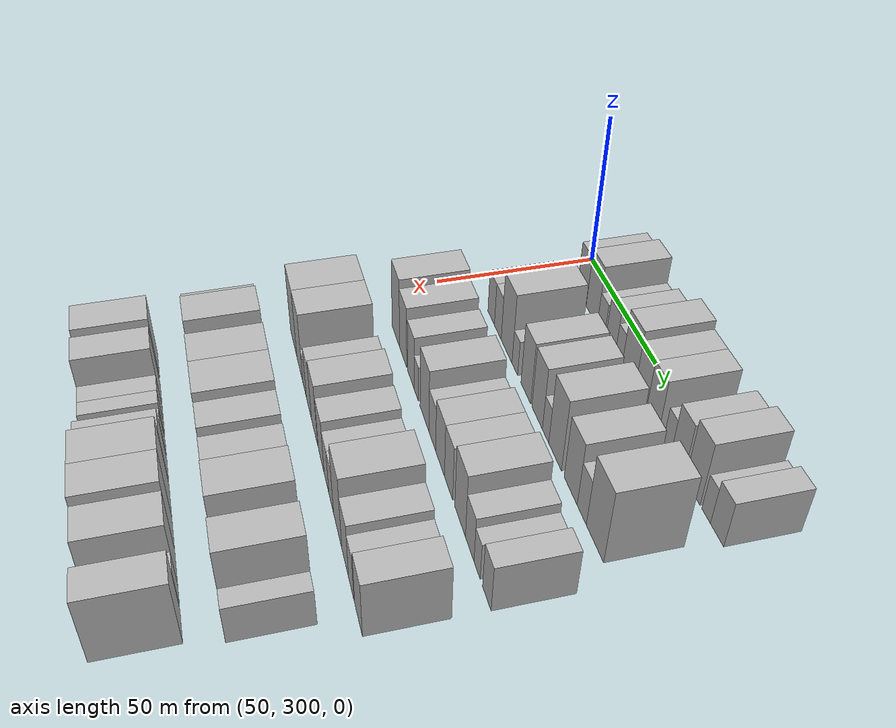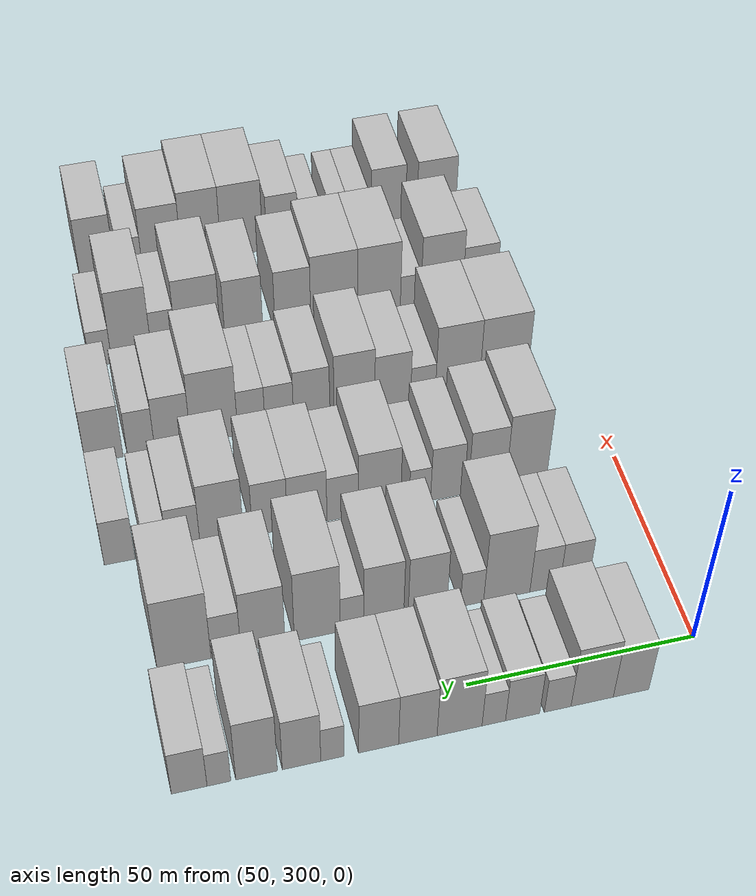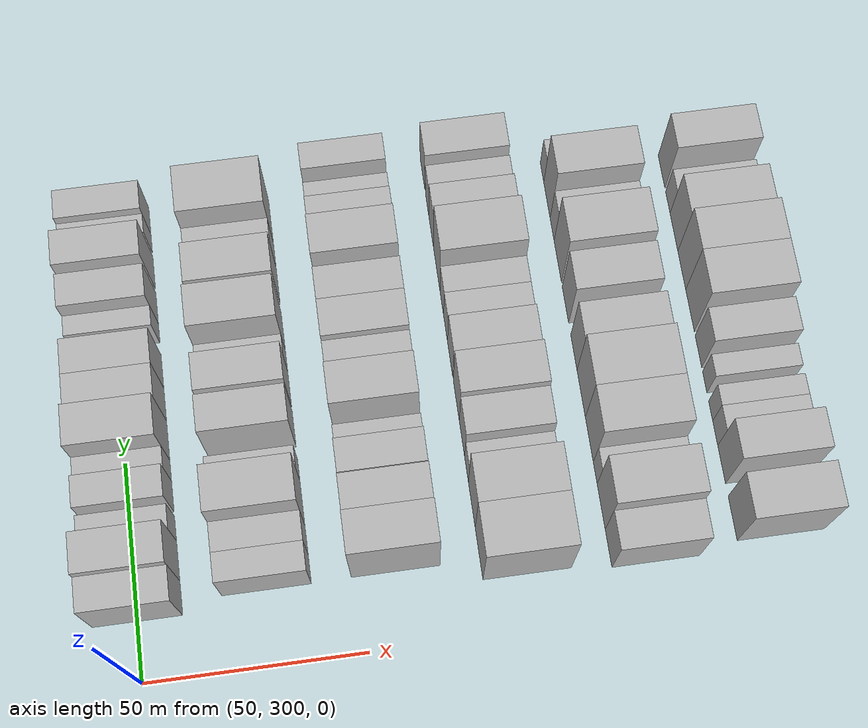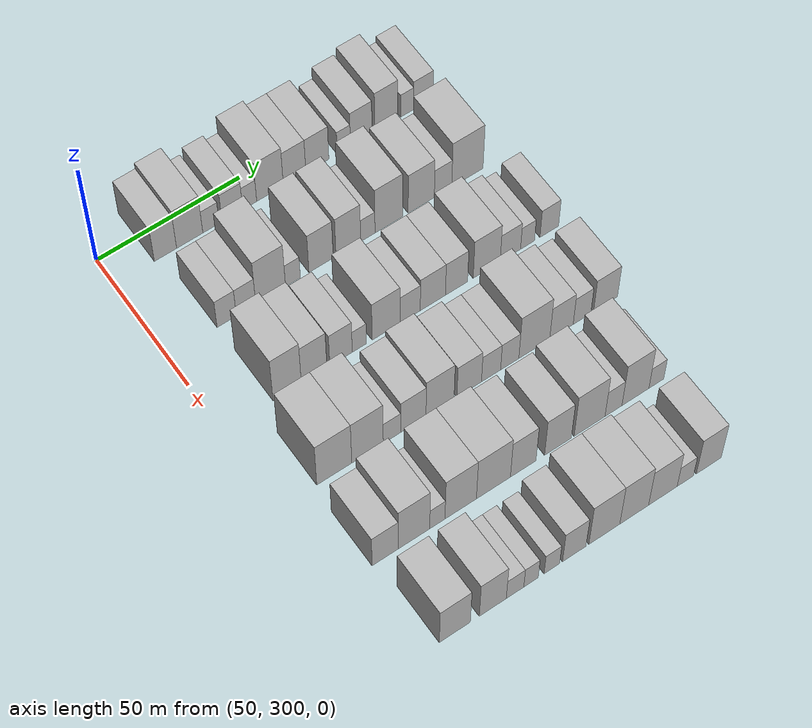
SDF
<sdf version="1.6">
 <world name="default">
  <model name="building_94">
   <static>1</static>
   <pose>50.0000 317.5456 0 0.000000 0.000000 0.000000</pose>
   <link name="link">
    <pose>0 0 9.00 0 0 0</pose>
    <collision name="collision"><geometry><box><size>20.0000 7.7484 18.0000</size></box></geometry></collision>
    <visual name="visual">
     <cast_shadows>0</cast_shadows>
     <geometry><box><size>20.0000 7.7484 18.0000</size></box></geometry>
     <material>
      <script>
       <uri>model://HANNAS_wall/materials/scripts</uri>
       <uri>model://HANNAS_wall/materials/textures</uri>
       <name>vrc/HANNAS_wall</name>
      </script>
     </material>
    </visual>
   </link>
  </model>
  <model name="building_95">
   <static>1</static>
   <pose>50.0000 325.9967 0 0.000000 0.000000 0.000000</pose>
   <link name="link">
    <pose>0 0 10.50 0 0 0</pose>
    <collision name="collision"><geometry><box><size>20.0000 9.1537 21.0000</size></box></geometry></collision>
    <visual name="visual">
     <cast_shadows>0</cast_shadows>
     <geometry><box><size>20.0000 9.1537 21.0000</size></box></geometry>
     <material>
      <script>
       <uri>model://HANNAS_wall/materials/scripts</uri>
       <uri>model://HANNAS_wall/materials/textures</uri>
       <name>vrc/HANNAS_wall</name>
      </script>
     </material>
    </visual>
   </link>
  </model>
  <model name="building_96">
   <static>1</static>
   <pose>50.0000 333.4361 0 0.000000 0.000000 0.000000</pose>
   <link name="link">
    <pose>0 0 6.00 0 0 0</pose>
    <collision name="collision"><geometry><box><size>20.0000 5.7251 12.0000</size></box></geometry></collision>
    <visual name="visual">
     <cast_shadows>0</cast_shadows>
     <geometry><box><size>20.0000 5.7251 12.0000</size></box></geometry>
     <material>
      <script>
       <uri>model://HANNAS_wall/materials/scripts</uri>
       <uri>model://HANNAS_wall/materials/textures</uri>
       <name>vrc/HANNAS_wall</name>
      </script>
     </material>
    </visual>
   </link>
  </model>
  <model name="building_97">
   <static>1</static>
   <pose>50.0000 340.9436 0 0.000000 0.000000 0.000000</pose>
   <link name="link">
    <pose>0 0 7.50 0 0 0</pose>
    <collision name="collision"><geometry><box><size>20.0000 7.2899 15.0000</size></box></geometry></collision>
    <visual name="visual">
     <cast_shadows>0</cast_shadows>
     <geometry><box><size>20.0000 7.2899 15.0000</size></box></geometry>
     <material>
      <script>
       <uri>model://HANNAS_wall/materials/scripts</uri>
       <uri>model://HANNAS_wall/materials/textures</uri>
       <name>vrc/HANNAS_wall</name>
      </script>
     </material>
    </visual>
   </link>
  </model>
  <model name="building_98">
   <static>1</static>
   <pose>50.0000 347.0834 0 0.000000 0.000000 0.000000</pose>
   <link name="link">
    <pose>0 0 6.00 0 0 0</pose>
    <collision name="collision"><geometry><box><size>20.0000 4.9898 12.0000</size></box></geometry></collision>
    <visual name="visual">
     <cast_shadows>0</cast_shadows>
     <geometry><box><size>20.0000 4.9898 12.0000</size></box></geometry>
     <material>
      <script>
       <uri>model://HANNAS_wall/materials/scripts</uri>
       <uri>model://HANNAS_wall/materials/textures</uri>
       <name>vrc/HANNAS_wall</name>
      </script>
     </material>
    </visual>
   </link>
  </model>
  <model name="building_99">
   <static>1</static>
   <pose>50.0000 354.3276 0 0.000000 0.000000 0.000000</pose>
   <link name="link">
    <pose>0 0 10.50 0 0 0</pose>
    <collision name="collision"><geometry><box><size>20.0000 9.4986 21.0000</size></box></geometry></collision>
    <visual name="visual">
     <cast_shadows>0</cast_shadows>
     <geometry><box><size>20.0000 9.4986 21.0000</size></box></geometry>
     <material>
      <script>
       <uri>model://HANNAS_wall/materials/scripts</uri>
       <uri>model://HANNAS_wall/materials/textures</uri>
       <name>vrc/HANNAS_wall</name>
      </script>
     </material>
    </visual>
   </link>
  </model>
  <model name="building_100">
   <static>1</static>
   <pose>50.0000 363.1067 0 0.000000 0.000000 0.000000</pose>
   <link name="link">
    <pose>0 0 9.00 0 0 0</pose>
    <collision name="collision"><geometry><box><size>20.0000 8.0596 18.0000</size></box></geometry></collision>
    <visual name="visual">
     <cast_shadows>0</cast_shadows>
     <geometry><box><size>20.0000 8.0596 18.0000</size></box></geometry>
     <material>
      <script>
       <uri>model://HANNAS_wall/materials/scripts</uri>
       <uri>model://HANNAS_wall/materials/textures</uri>
       <name>vrc/HANNAS_wall</name>
      </script>
     </material>
    </visual>
   </link>
  </model>
  <model name="building_101">
   <static>1</static>
   <pose>50.0000 371.2919 0 0.000000 0.000000 0.000000</pose>
   <link name="link">
    <pose>0 0 9.00 0 0 0</pose>
    <collision name="collision"><geometry><box><size>20.0000 8.3108 18.0000</size></box></geometry></collision>
    <visual name="visual">
     <cast_shadows>0</cast_shadows>
     <geometry><box><size>20.0000 8.3108 18.0000</size></box></geometry>
     <material>
      <script>
       <uri>model://HANNAS_wall/materials/scripts</uri>
       <uri>model://HANNAS_wall/materials/textures</uri>
       <name>vrc/HANNAS_wall</name>
      </script>
     </material>
    </visual>
   </link>
  </model>
  <model name="building_102">
   <static>1</static>
   <pose>50.0000 380.8614 0 0.000000 0.000000 0.000000</pose>
   <link name="link">
    <pose>0 0 6.00 0 0 0</pose>
    <collision name="collision"><geometry><box><size>20.0000 4.8282 12.0000</size></box></geometry></collision>
    <visual name="visual">
     <cast_shadows>0</cast_shadows>
     <geometry><box><size>20.0000 4.8282 12.0000</size></box></geometry>
     <material>
      <script>
       <uri>model://HANNAS_wall/materials/scripts</uri>
       <uri>model://HANNAS_wall/materials/textures</uri>
       <name>vrc/HANNAS_wall</name>
      </script>
     </material>
    </visual>
   </link>
  </model>
  <model name="building_103">
   <static>1</static>
   <pose>50.0000 387.2136 0 0.000000 0.000000 0.000000</pose>
   <link name="link">
    <pose>0 0 9.00 0 0 0</pose>
    <collision name="collision"><geometry><box><size>20.0000 7.8762 18.0000</size></box></geometry></collision>
    <visual name="visual">
     <cast_shadows>0</cast_shadows>
     <geometry><box><size>20.0000 7.8762 18.0000</size></box></geometry>
     <material>
      <script>
       <uri>model://HANNAS_wall/materials/scripts</uri>
       <uri>model://HANNAS_wall/materials/textures</uri>
       <name>vrc/HANNAS_wall</name>
      </script>
     </material>
    </visual>
   </link>
  </model>
  <model name="building_104">
   <static>1</static>
   <pose>50.0000 396.3852 0 0.000000 0.000000 0.000000</pose>
   <link name="link">
    <pose>0 0 10.50 0 0 0</pose>
    <collision name="collision"><geometry><box><size>20.0000 8.4671 21.0000</size></box></geometry></collision>
    <visual name="visual">
     <cast_shadows>0</cast_shadows>
     <geometry><box><size>20.0000 8.4671 21.0000</size></box></geometry>
     <material>
      <script>
       <uri>model://HANNAS_wall/materials/scripts</uri>
       <uri>model://HANNAS_wall/materials/textures</uri>
       <name>vrc/HANNAS_wall</name>
      </script>
     </material>
    </visual>
   </link>
  </model>
  <model name="building_105">
   <static>1</static>
   <pose>50.0000 404.0233 0 0.000000 0.000000 0.000000</pose>
   <link name="link">
    <pose>0 0 6.00 0 0 0</pose>
    <collision name="collision"><geometry><box><size>20.0000 4.8091 12.0000</size></box></geometry></collision>
    <visual name="visual">
     <cast_shadows>0</cast_shadows>
     <geometry><box><size>20.0000 4.8091 12.0000</size></box></geometry>
     <material>
      <script>
       <uri>model://HANNAS_wall/materials/scripts</uri>
       <uri>model://HANNAS_wall/materials/textures</uri>
       <name>vrc/HANNAS_wall</name>
      </script>
     </material>
    </visual>
   </link>
  </model>
  <model name="building_106">
   <static>1</static>
   <pose>50.0000 410.0201 0 0.000000 0.000000 0.000000</pose>
   <link name="link">
    <pose>0 0 7.50 0 0 0</pose>
    <collision name="collision"><geometry><box><size>20.0000 7.1845 15.0000</size></box></geometry></collision>
    <visual name="visual">
     <cast_shadows>0</cast_shadows>
     <geometry><box><size>20.0000 7.1845 15.0000</size></box></geometry>
     <material>
      <script>
       <uri>model://HANNAS_wall/materials/scripts</uri>
       <uri>model://HANNAS_wall/materials/textures</uri>
       <name>vrc/HANNAS_wall</name>
      </script>
     </material>
    </visual>
   </link>
  </model>
  <model name="building_211">
   <static>1</static>
   <pose>79.0000 320.1495 0 0.000000 0.000000 0.000000</pose>
   <link name="link">
    <pose>0 0 7.50 0 0 0</pose>
    <collision name="collision"><geometry><box><size>20.0000 6.6454 15.0000</size></box></geometry></collision>
    <visual name="visual">
     <cast_shadows>0</cast_shadows>
     <geometry><box><size>20.0000 6.6454 15.0000</size></box></geometry>
     <material>
      <script>
       <uri>model://HANNAS_wall/materials/scripts</uri>
       <uri>model://HANNAS_wall/materials/textures</uri>
       <name>vrc/HANNAS_wall</name>
      </script>
     </material>
    </visual>
   </link>
  </model>
  <model name="building_212">
   <static>1</static>
   <pose>79.0000 326.8447 0 0.000000 0.000000 0.000000</pose>
   <link name="link">
    <pose>0 0 7.50 0 0 0</pose>
    <collision name="collision"><geometry><box><size>20.0000 6.7449 15.0000</size></box></geometry></collision>
    <visual name="visual">
     <cast_shadows>0</cast_shadows>
     <geometry><box><size>20.0000 6.7449 15.0000</size></box></geometry>
     <material>
      <script>
       <uri>model://HANNAS_wall/materials/scripts</uri>
       <uri>model://HANNAS_wall/materials/textures</uri>
       <name>vrc/HANNAS_wall</name>
      </script>
     </material>
    </visual>
   </link>
  </model>
  <model name="building_213">
   <static>1</static>
   <pose>79.0000 335.4076 0 0.000000 0.000000 0.000000</pose>
   <link name="link">
    <pose>0 0 12.00 0 0 0</pose>
    <collision name="collision"><geometry><box><size>20.0000 10.3808 24.0000</size></box></geometry></collision>
    <visual name="visual">
     <cast_shadows>0</cast_shadows>
     <geometry><box><size>20.0000 10.3808 24.0000</size></box></geometry>
     <material>
      <script>
       <uri>model://HANNAS_wall/materials/scripts</uri>
       <uri>model://HANNAS_wall/materials/textures</uri>
       <name>vrc/HANNAS_wall</name>
      </script>
     </material>
    </visual>
   </link>
  </model>
  <model name="building_214">
   <static>1</static>
   <pose>79.0000 343.2000 0 0.000000 0.000000 0.000000</pose>
   <link name="link">
    <pose>0 0 6.00 0 0 0</pose>
    <collision name="collision"><geometry><box><size>20.0000 5.2040 12.0000</size></box></geometry></collision>
    <visual name="visual">
     <cast_shadows>0</cast_shadows>
     <geometry><box><size>20.0000 5.2040 12.0000</size></box></geometry>
     <material>
      <script>
       <uri>model://HANNAS_wall/materials/scripts</uri>
       <uri>model://HANNAS_wall/materials/textures</uri>
       <name>vrc/HANNAS_wall</name>
      </script>
     </material>
    </visual>
   </link>
  </model>
  <model name="building_215">
   <static>1</static>
   <pose>79.0000 353.0894 0 0.000000 0.000000 0.000000</pose>
   <link name="link">
    <pose>0 0 10.50 0 0 0</pose>
    <collision name="collision"><geometry><box><size>20.0000 8.5747 21.0000</size></box></geometry></collision>
    <visual name="visual">
     <cast_shadows>0</cast_shadows>
     <geometry><box><size>20.0000 8.5747 21.0000</size></box></geometry>
     <material>
      <script>
       <uri>model://HANNAS_wall/materials/scripts</uri>
       <uri>model://HANNAS_wall/materials/textures</uri>
       <name>vrc/HANNAS_wall</name>
      </script>
     </material>
    </visual>
   </link>
  </model>
  <model name="building_216">
   <static>1</static>
   <pose>79.0000 362.7636 0 0.000000 0.000000 0.000000</pose>
   <link name="link">
    <pose>0 0 10.50 0 0 0</pose>
    <collision name="collision"><geometry><box><size>20.0000 8.7737 21.0000</size></box></geometry></collision>
    <visual name="visual">
     <cast_shadows>0</cast_shadows>
     <geometry><box><size>20.0000 8.7737 21.0000</size></box></geometry>
     <material>
      <script>
       <uri>model://HANNAS_wall/materials/scripts</uri>
       <uri>model://HANNAS_wall/materials/textures</uri>
       <name>vrc/HANNAS_wall</name>
      </script>
     </material>
    </visual>
   </link>
  </model>
  <model name="building_217">
   <static>1</static>
   <pose>79.0000 369.7129 0 0.000000 0.000000 0.000000</pose>
   <link name="link">
    <pose>0 0 6.00 0 0 0</pose>
    <collision name="collision"><geometry><box><size>20.0000 5.1248 12.0000</size></box></geometry></collision>
    <visual name="visual">
     <cast_shadows>0</cast_shadows>
     <geometry><box><size>20.0000 5.1248 12.0000</size></box></geometry>
     <material>
      <script>
       <uri>model://HANNAS_wall/materials/scripts</uri>
       <uri>model://HANNAS_wall/materials/textures</uri>
       <name>vrc/HANNAS_wall</name>
      </script>
     </material>
    </visual>
   </link>
  </model>
  <model name="building_218">
   <static>1</static>
   <pose>79.0000 377.2242 0 0.000000 0.000000 0.000000</pose>
   <link name="link">
    <pose>0 0 12.00 0 0 0</pose>
    <collision name="collision"><geometry><box><size>20.0000 9.8980 24.0000</size></box></geometry></collision>
    <visual name="visual">
     <cast_shadows>0</cast_shadows>
     <geometry><box><size>20.0000 9.8980 24.0000</size></box></geometry>
     <material>
      <script>
       <uri>model://HANNAS_wall/materials/scripts</uri>
       <uri>model://HANNAS_wall/materials/textures</uri>
       <name>vrc/HANNAS_wall</name>
      </script>
     </material>
    </visual>
   </link>
  </model>
  <model name="building_219">
   <static>1</static>
   <pose>79.0000 388.9121 0 0.000000 0.000000 0.000000</pose>
   <link name="link">
    <pose>0 0 10.50 0 0 0</pose>
    <collision name="collision"><geometry><box><size>20.0000 9.4777 21.0000</size></box></geometry></collision>
    <visual name="visual">
     <cast_shadows>0</cast_shadows>
     <geometry><box><size>20.0000 9.4777 21.0000</size></box></geometry>
     <material>
      <script>
       <uri>model://HANNAS_wall/materials/scripts</uri>
       <uri>model://HANNAS_wall/materials/textures</uri>
       <name>vrc/HANNAS_wall</name>
      </script>
     </material>
    </visual>
   </link>
  </model>
  <model name="building_220">
   <static>1</static>
   <pose>79.0000 396.8178 0 0.000000 0.000000 0.000000</pose>
   <link name="link">
    <pose>0 0 7.50 0 0 0</pose>
    <collision name="collision"><geometry><box><size>20.0000 6.3336 15.0000</size></box></geometry></collision>
    <visual name="visual">
     <cast_shadows>0</cast_shadows>
     <geometry><box><size>20.0000 6.3336 15.0000</size></box></geometry>
     <material>
      <script>
       <uri>model://HANNAS_wall/materials/scripts</uri>
       <uri>model://HANNAS_wall/materials/textures</uri>
       <name>vrc/HANNAS_wall</name>
      </script>
     </material>
    </visual>
   </link>
  </model>
  <model name="building_221">
   <static>1</static>
   <pose>79.0000 405.7163 0 0.000000 0.000000 0.000000</pose>
   <link name="link">
    <pose>0 0 12.00 0 0 0</pose>
    <collision name="collision"><geometry><box><size>20.0000 11.4636 24.0000</size></box></geometry></collision>
    <visual name="visual">
     <cast_shadows>0</cast_shadows>
     <geometry><box><size>20.0000 11.4636 24.0000</size></box></geometry>
     <material>
      <script>
       <uri>model://HANNAS_wall/materials/scripts</uri>
       <uri>model://HANNAS_wall/materials/textures</uri>
       <name>vrc/HANNAS_wall</name>
      </script>
     </material>
    </visual>
   </link>
  </model>
  <model name="building_326">
   <static>1</static>
   <pose>108.0000 321.8942 0 0.000000 0.000000 0.000000</pose>
   <link name="link">
    <pose>0 0 12.00 0 0 0</pose>
    <collision name="collision"><geometry><box><size>20.0000 9.6993 24.0000</size></box></geometry></collision>
    <visual name="visual">
     <cast_shadows>0</cast_shadows>
     <geometry><box><size>20.0000 9.6993 24.0000</size></box></geometry>
     <material>
      <script>
       <uri>model://HANNAS_wall/materials/scripts</uri>
       <uri>model://HANNAS_wall/materials/textures</uri>
       <name>vrc/HANNAS_wall</name>
      </script>
     </material>
    </visual>
   </link>
  </model>
  <model name="building_327">
   <static>1</static>
   <pose>108.0000 331.1602 0 0.000000 0.000000 0.000000</pose>
   <link name="link">
    <pose>0 0 10.50 0 0 0</pose>
    <collision name="collision"><geometry><box><size>20.0000 8.8326 21.0000</size></box></geometry></collision>
    <visual name="visual">
     <cast_shadows>0</cast_shadows>
     <geometry><box><size>20.0000 8.8326 21.0000</size></box></geometry>
     <material>
      <script>
       <uri>model://HANNAS_wall/materials/scripts</uri>
       <uri>model://HANNAS_wall/materials/textures</uri>
       <name>vrc/HANNAS_wall</name>
      </script>
     </material>
    </visual>
   </link>
  </model>
  <model name="building_328">
   <static>1</static>
   <pose>108.0000 340.4703 0 0.000000 0.000000 0.000000</pose>
   <link name="link">
    <pose>0 0 9.00 0 0 0</pose>
    <collision name="collision"><geometry><box><size>20.0000 7.7877 18.0000</size></box></geometry></collision>
    <visual name="visual">
     <cast_shadows>0</cast_shadows>
     <geometry><box><size>20.0000 7.7877 18.0000</size></box></geometry>
     <material>
      <script>
       <uri>model://HANNAS_wall/materials/scripts</uri>
       <uri>model://HANNAS_wall/materials/textures</uri>
       <name>vrc/HANNAS_wall</name>
      </script>
     </material>
    </visual>
   </link>
  </model>
  <model name="building_329">
   <static>1</static>
   <pose>108.0000 346.8406 0 0.000000 0.000000 0.000000</pose>
   <link name="link">
    <pose>0 0 6.00 0 0 0</pose>
    <collision name="collision"><geometry><box><size>20.0000 4.9529 12.0000</size></box></geometry></collision>
    <visual name="visual">
     <cast_shadows>0</cast_shadows>
     <geometry><box><size>20.0000 4.9529 12.0000</size></box></geometry>
     <material>
      <script>
       <uri>model://HANNAS_wall/materials/scripts</uri>
       <uri>model://HANNAS_wall/materials/textures</uri>
       <name>vrc/HANNAS_wall</name>
      </script>
     </material>
    </visual>
   </link>
  </model>
  <model name="building_330">
   <static>1</static>
   <pose>108.0000 356.1940 0 0.000000 0.000000 0.000000</pose>
   <link name="link">
    <pose>0 0 10.50 0 0 0</pose>
    <collision name="collision"><geometry><box><size>20.0000 9.7540 21.0000</size></box></geometry></collision>
    <visual name="visual">
     <cast_shadows>0</cast_shadows>
     <geometry><box><size>20.0000 9.7540 21.0000</size></box></geometry>
     <material>
      <script>
       <uri>model://HANNAS_wall/materials/scripts</uri>
       <uri>model://HANNAS_wall/materials/textures</uri>
       <name>vrc/HANNAS_wall</name>
      </script>
     </material>
    </visual>
   </link>
  </model>
  <model name="building_331">
   <static>1</static>
   <pose>108.0000 364.6523 0 0.000000 0.000000 0.000000</pose>
   <link name="link">
    <pose>0 0 7.50 0 0 0</pose>
    <collision name="collision"><geometry><box><size>20.0000 7.1626 15.0000</size></box></geometry></collision>
    <visual name="visual">
     <cast_shadows>0</cast_shadows>
     <geometry><box><size>20.0000 7.1626 15.0000</size></box></geometry>
     <material>
      <script>
       <uri>model://HANNAS_wall/materials/scripts</uri>
       <uri>model://HANNAS_wall/materials/textures</uri>
       <name>vrc/HANNAS_wall</name>
      </script>
     </material>
    </visual>
   </link>
  </model>
  <model name="building_332">
   <static>1</static>
   <pose>108.0000 372.7127 0 0.000000 0.000000 0.000000</pose>
   <link name="link">
    <pose>0 0 9.00 0 0 0</pose>
    <collision name="collision"><geometry><box><size>20.0000 8.9581 18.0000</size></box></geometry></collision>
    <visual name="visual">
     <cast_shadows>0</cast_shadows>
     <geometry><box><size>20.0000 8.9581 18.0000</size></box></geometry>
     <material>
      <script>
       <uri>model://HANNAS_wall/materials/scripts</uri>
       <uri>model://HANNAS_wall/materials/textures</uri>
       <name>vrc/HANNAS_wall</name>
      </script>
     </material>
    </visual>
   </link>
  </model>
  <model name="building_333">
   <static>1</static>
   <pose>108.0000 381.1508 0 0.000000 0.000000 0.000000</pose>
   <link name="link">
    <pose>0 0 9.00 0 0 0</pose>
    <collision name="collision"><geometry><box><size>20.0000 7.9183 18.0000</size></box></geometry></collision>
    <visual name="visual">
     <cast_shadows>0</cast_shadows>
     <geometry><box><size>20.0000 7.9183 18.0000</size></box></geometry>
     <material>
      <script>
       <uri>model://HANNAS_wall/materials/scripts</uri>
       <uri>model://HANNAS_wall/materials/textures</uri>
       <name>vrc/HANNAS_wall</name>
      </script>
     </material>
    </visual>
   </link>
  </model>
  <model name="building_334">
   <static>1</static>
   <pose>108.0000 391.9705 0 0.000000 0.000000 0.000000</pose>
   <link name="link">
    <pose>0 0 10.50 0 0 0</pose>
    <collision name="collision"><geometry><box><size>20.0000 9.7210 21.0000</size></box></geometry></collision>
    <visual name="visual">
     <cast_shadows>0</cast_shadows>
     <geometry><box><size>20.0000 9.7210 21.0000</size></box></geometry>
     <material>
      <script>
       <uri>model://HANNAS_wall/materials/scripts</uri>
       <uri>model://HANNAS_wall/materials/textures</uri>
       <name>vrc/HANNAS_wall</name>
      </script>
     </material>
    </visual>
   </link>
  </model>
  <model name="building_335">
   <static>1</static>
   <pose>108.0000 400.5293 0 0.000000 0.000000 0.000000</pose>
   <link name="link">
    <pose>0 0 7.50 0 0 0</pose>
    <collision name="collision"><geometry><box><size>20.0000 7.3966 15.0000</size></box></geometry></collision>
    <visual name="visual">
     <cast_shadows>0</cast_shadows>
     <geometry><box><size>20.0000 7.3966 15.0000</size></box></geometry>
     <material>
      <script>
       <uri>model://HANNAS_wall/materials/scripts</uri>
       <uri>model://HANNAS_wall/materials/textures</uri>
       <name>vrc/HANNAS_wall</name>
      </script>
     </material>
    </visual>
   </link>
  </model>
  <model name="building_336">
   <static>1</static>
   <pose>108.0000 406.7653 0 0.000000 0.000000 0.000000</pose>
   <link name="link">
    <pose>0 0 6.00 0 0 0</pose>
    <collision name="collision"><geometry><box><size>20.0000 5.0753 12.0000</size></box></geometry></collision>
    <visual name="visual">
     <cast_shadows>0</cast_shadows>
     <geometry><box><size>20.0000 5.0753 12.0000</size></box></geometry>
     <material>
      <script>
       <uri>model://HANNAS_wall/materials/scripts</uri>
       <uri>model://HANNAS_wall/materials/textures</uri>
       <name>vrc/HANNAS_wall</name>
      </script>
     </material>
    </visual>
   </link>
  </model>
  <model name="building_337">
   <static>1</static>
   <pose>108.0000 414.7050 0 0.000000 0.000000 0.000000</pose>
   <link name="link">
    <pose>0 0 7.50 0 0 0</pose>
    <collision name="collision"><geometry><box><size>20.0000 6.8040 15.0000</size></box></geometry></collision>
    <visual name="visual">
     <cast_shadows>0</cast_shadows>
     <geometry><box><size>20.0000 6.8040 15.0000</size></box></geometry>
     <material>
      <script>
       <uri>model://HANNAS_wall/materials/scripts</uri>
       <uri>model://HANNAS_wall/materials/textures</uri>
       <name>vrc/HANNAS_wall</name>
      </script>
     </material>
    </visual>
   </link>
  </model>
  <model name="building_443">
   <static>1</static>
   <pose>137.0000 318.4791 0 0.000000 0.000000 0.000000</pose>
   <link name="link">
    <pose>0 0 12.00 0 0 0</pose>
    <collision name="collision"><geometry><box><size>20.0000 11.8787 24.0000</size></box></geometry></collision>
    <visual name="visual">
     <cast_shadows>0</cast_shadows>
     <geometry><box><size>20.0000 11.8787 24.0000</size></box></geometry>
     <material>
      <script>
       <uri>model://HANNAS_wall/materials/scripts</uri>
       <uri>model://HANNAS_wall/materials/textures</uri>
       <name>vrc/HANNAS_wall</name>
      </script>
     </material>
    </visual>
   </link>
  </model>
  <model name="building_444">
   <static>1</static>
   <pose>137.0000 329.7990 0 0.000000 0.000000 0.000000</pose>
   <link name="link">
    <pose>0 0 12.00 0 0 0</pose>
    <collision name="collision"><geometry><box><size>20.0000 10.7611 24.0000</size></box></geometry></collision>
    <visual name="visual">
     <cast_shadows>0</cast_shadows>
     <geometry><box><size>20.0000 10.7611 24.0000</size></box></geometry>
     <material>
      <script>
       <uri>model://HANNAS_wall/materials/scripts</uri>
       <uri>model://HANNAS_wall/materials/textures</uri>
       <name>vrc/HANNAS_wall</name>
      </script>
     </material>
    </visual>
   </link>
  </model>
  <model name="building_445">
   <static>1</static>
   <pose>137.0000 338.1789 0 0.000000 0.000000 0.000000</pose>
   <link name="link">
    <pose>0 0 6.00 0 0 0</pose>
    <collision name="collision"><geometry><box><size>20.0000 5.9987 12.0000</size></box></geometry></collision>
    <visual name="visual">
     <cast_shadows>0</cast_shadows>
     <geometry><box><size>20.0000 5.9987 12.0000</size></box></geometry>
     <material>
      <script>
       <uri>model://HANNAS_wall/materials/scripts</uri>
       <uri>model://HANNAS_wall/materials/textures</uri>
       <name>vrc/HANNAS_wall</name>
      </script>
     </material>
    </visual>
   </link>
  </model>
  <model name="building_446">
   <static>1</static>
   <pose>137.0000 345.5407 0 0.000000 0.000000 0.000000</pose>
   <link name="link">
    <pose>0 0 9.00 0 0 0</pose>
    <collision name="collision"><geometry><box><size>20.0000 8.7248 18.0000</size></box></geometry></collision>
    <visual name="visual">
     <cast_shadows>0</cast_shadows>
     <geometry><box><size>20.0000 8.7248 18.0000</size></box></geometry>
     <material>
      <script>
       <uri>model://HANNAS_wall/materials/scripts</uri>
       <uri>model://HANNAS_wall/materials/textures</uri>
       <name>vrc/HANNAS_wall</name>
      </script>
     </material>
    </visual>
   </link>
  </model>
  <model name="building_447">
   <static>1</static>
   <pose>137.0000 354.7885 0 0.000000 0.000000 0.000000</pose>
   <link name="link">
    <pose>0 0 10.50 0 0 0</pose>
    <collision name="collision"><geometry><box><size>20.0000 9.7709 21.0000</size></box></geometry></collision>
    <visual name="visual">
     <cast_shadows>0</cast_shadows>
     <geometry><box><size>20.0000 9.7709 21.0000</size></box></geometry>
     <material>
      <script>
       <uri>model://HANNAS_wall/materials/scripts</uri>
       <uri>model://HANNAS_wall/materials/textures</uri>
       <name>vrc/HANNAS_wall</name>
      </script>
     </material>
    </visual>
   </link>
  </model>
  <model name="building_448">
   <static>1</static>
   <pose>137.0000 364.9787 0 0.000000 0.000000 0.000000</pose>
   <link name="link">
    <pose>0 0 9.00 0 0 0</pose>
    <collision name="collision"><geometry><box><size>20.0000 8.6094 18.0000</size></box></geometry></collision>
    <visual name="visual">
     <cast_shadows>0</cast_shadows>
     <geometry><box><size>20.0000 8.6094 18.0000</size></box></geometry>
     <material>
      <script>
       <uri>model://HANNAS_wall/materials/scripts</uri>
       <uri>model://HANNAS_wall/materials/textures</uri>
       <name>vrc/HANNAS_wall</name>
      </script>
     </material>
    </visual>
   </link>
  </model>
  <model name="building_449">
   <static>1</static>
   <pose>137.0000 372.6633 0 0.000000 0.000000 0.000000</pose>
   <link name="link">
    <pose>0 0 7.50 0 0 0</pose>
    <collision name="collision"><geometry><box><size>20.0000 6.7599 15.0000</size></box></geometry></collision>
    <visual name="visual">
     <cast_shadows>0</cast_shadows>
     <geometry><box><size>20.0000 6.7599 15.0000</size></box></geometry>
     <material>
      <script>
       <uri>model://HANNAS_wall/materials/scripts</uri>
       <uri>model://HANNAS_wall/materials/textures</uri>
       <name>vrc/HANNAS_wall</name>
      </script>
     </material>
    </visual>
   </link>
  </model>
  <model name="building_450">
   <static>1</static>
   <pose>137.0000 379.2748 0 0.000000 0.000000 0.000000</pose>
   <link name="link">
    <pose>0 0 7.50 0 0 0</pose>
    <collision name="collision"><geometry><box><size>20.0000 6.4633 15.0000</size></box></geometry></collision>
    <visual name="visual">
     <cast_shadows>0</cast_shadows>
     <geometry><box><size>20.0000 6.4633 15.0000</size></box></geometry>
     <material>
      <script>
       <uri>model://HANNAS_wall/materials/scripts</uri>
       <uri>model://HANNAS_wall/materials/textures</uri>
       <name>vrc/HANNAS_wall</name>
      </script>
     </material>
    </visual>
   </link>
  </model>
  <model name="building_451">
   <static>1</static>
   <pose>137.0000 388.0158 0 0.000000 0.000000 0.000000</pose>
   <link name="link">
    <pose>0 0 12.00 0 0 0</pose>
    <collision name="collision"><geometry><box><size>20.0000 11.0187 24.0000</size></box></geometry></collision>
    <visual name="visual">
     <cast_shadows>0</cast_shadows>
     <geometry><box><size>20.0000 11.0187 24.0000</size></box></geometry>
     <material>
      <script>
       <uri>model://HANNAS_wall/materials/scripts</uri>
       <uri>model://HANNAS_wall/materials/textures</uri>
       <name>vrc/HANNAS_wall</name>
      </script>
     </material>
    </visual>
   </link>
  </model>
  <model name="building_452">
   <static>1</static>
   <pose>137.0000 397.7328 0 0.000000 0.000000 0.000000</pose>
   <link name="link">
    <pose>0 0 9.00 0 0 0</pose>
    <collision name="collision"><geometry><box><size>20.0000 8.4152 18.0000</size></box></geometry></collision>
    <visual name="visual">
     <cast_shadows>0</cast_shadows>
     <geometry><box><size>20.0000 8.4152 18.0000</size></box></geometry>
     <material>
      <script>
       <uri>model://HANNAS_wall/materials/scripts</uri>
       <uri>model://HANNAS_wall/materials/textures</uri>
       <name>vrc/HANNAS_wall</name>
      </script>
     </material>
    </visual>
   </link>
  </model>
  <model name="building_453">
   <static>1</static>
   <pose>137.0000 405.1197 0 0.000000 0.000000 0.000000</pose>
   <link name="link">
    <pose>0 0 7.50 0 0 0</pose>
    <collision name="collision"><geometry><box><size>20.0000 6.3587 15.0000</size></box></geometry></collision>
    <visual name="visual">
     <cast_shadows>0</cast_shadows>
     <geometry><box><size>20.0000 6.3587 15.0000</size></box></geometry>
     <material>
      <script>
       <uri>model://HANNAS_wall/materials/scripts</uri>
       <uri>model://HANNAS_wall/materials/textures</uri>
       <name>vrc/HANNAS_wall</name>
      </script>
     </material>
    </visual>
   </link>
  </model>
  <model name="building_454">
   <static>1</static>
   <pose>137.0000 413.6457 0 0.000000 0.000000 0.000000</pose>
   <link name="link">
    <pose>0 0 9.00 0 0 0</pose>
    <collision name="collision"><geometry><box><size>20.0000 8.6934 18.0000</size></box></geometry></collision>
    <visual name="visual">
     <cast_shadows>0</cast_shadows>
     <geometry><box><size>20.0000 8.6934 18.0000</size></box></geometry>
     <material>
      <script>
       <uri>model://HANNAS_wall/materials/scripts</uri>
       <uri>model://HANNAS_wall/materials/textures</uri>
       <name>vrc/HANNAS_wall</name>
      </script>
     </material>
    </visual>
   </link>
  </model>
  <model name="building_563">
   <static>1</static>
   <pose>166.0000 315.7777 0 0.000000 0.000000 0.000000</pose>
   <link name="link">
    <pose>0 0 9.00 0 0 0</pose>
    <collision name="collision"><geometry><box><size>20.0000 8.7496 18.0000</size></box></geometry></collision>
    <visual name="visual">
     <cast_shadows>0</cast_shadows>
     <geometry><box><size>20.0000 8.7496 18.0000</size></box></geometry>
     <material>
      <script>
       <uri>model://HANNAS_wall/materials/scripts</uri>
       <uri>model://HANNAS_wall/materials/textures</uri>
       <name>vrc/HANNAS_wall</name>
      </script>
     </material>
    </visual>
   </link>
  </model>
  <model name="building_564">
   <static>1</static>
   <pose>166.0000 325.4791 0 0.000000 0.000000 0.000000</pose>
   <link name="link">
    <pose>0 0 12.00 0 0 0</pose>
    <collision name="collision"><geometry><box><size>20.0000 10.6532 24.0000</size></box></geometry></collision>
    <visual name="visual">
     <cast_shadows>0</cast_shadows>
     <geometry><box><size>20.0000 10.6532 24.0000</size></box></geometry>
     <material>
      <script>
       <uri>model://HANNAS_wall/materials/scripts</uri>
       <uri>model://HANNAS_wall/materials/textures</uri>
       <name>vrc/HANNAS_wall</name>
      </script>
     </material>
    </visual>
   </link>
  </model>
  <model name="building_565">
   <static>1</static>
   <pose>166.0000 333.3947 0 0.000000 0.000000 0.000000</pose>
   <link name="link">
    <pose>0 0 6.00 0 0 0</pose>
    <collision name="collision"><geometry><box><size>20.0000 5.1779 12.0000</size></box></geometry></collision>
    <visual name="visual">
     <cast_shadows>0</cast_shadows>
     <geometry><box><size>20.0000 5.1779 12.0000</size></box></geometry>
     <material>
      <script>
       <uri>model://HANNAS_wall/materials/scripts</uri>
       <uri>model://HANNAS_wall/materials/textures</uri>
       <name>vrc/HANNAS_wall</name>
      </script>
     </material>
    </visual>
   </link>
  </model>
  <model name="building_566">
   <static>1</static>
   <pose>166.0000 341.3629 0 0.000000 0.000000 0.000000</pose>
   <link name="link">
    <pose>0 0 12.00 0 0 0</pose>
    <collision name="collision"><geometry><box><size>20.0000 10.7587 24.0000</size></box></geometry></collision>
    <visual name="visual">
     <cast_shadows>0</cast_shadows>
     <geometry><box><size>20.0000 10.7587 24.0000</size></box></geometry>
     <material>
      <script>
       <uri>model://HANNAS_wall/materials/scripts</uri>
       <uri>model://HANNAS_wall/materials/textures</uri>
       <name>vrc/HANNAS_wall</name>
      </script>
     </material>
    </visual>
   </link>
  </model>
  <model name="building_567">
   <static>1</static>
   <pose>166.0000 352.6071 0 0.000000 0.000000 0.000000</pose>
   <link name="link">
    <pose>0 0 12.00 0 0 0</pose>
    <collision name="collision"><geometry><box><size>20.0000 11.7297 24.0000</size></box></geometry></collision>
    <visual name="visual">
     <cast_shadows>0</cast_shadows>
     <geometry><box><size>20.0000 11.7297 24.0000</size></box></geometry>
     <material>
      <script>
       <uri>model://HANNAS_wall/materials/scripts</uri>
       <uri>model://HANNAS_wall/materials/textures</uri>
       <name>vrc/HANNAS_wall</name>
      </script>
     </material>
    </visual>
   </link>
  </model>
  <model name="building_568">
   <static>1</static>
   <pose>166.0000 362.9113 0 0.000000 0.000000 0.000000</pose>
   <link name="link">
    <pose>0 0 10.50 0 0 0</pose>
    <collision name="collision"><geometry><box><size>20.0000 8.8787 21.0000</size></box></geometry></collision>
    <visual name="visual">
     <cast_shadows>0</cast_shadows>
     <geometry><box><size>20.0000 8.8787 21.0000</size></box></geometry>
     <material>
      <script>
       <uri>model://HANNAS_wall/materials/scripts</uri>
       <uri>model://HANNAS_wall/materials/textures</uri>
       <name>vrc/HANNAS_wall</name>
      </script>
     </material>
    </visual>
   </link>
  </model>
  <model name="building_569">
   <static>1</static>
   <pose>166.0000 375.0341 0 0.000000 0.000000 0.000000</pose>
   <link name="link">
    <pose>0 0 10.50 0 0 0</pose>
    <collision name="collision"><geometry><box><size>20.0000 9.3670 21.0000</size></box></geometry></collision>
    <visual name="visual">
     <cast_shadows>0</cast_shadows>
     <geometry><box><size>20.0000 9.3670 21.0000</size></box></geometry>
     <material>
      <script>
       <uri>model://HANNAS_wall/materials/scripts</uri>
       <uri>model://HANNAS_wall/materials/textures</uri>
       <name>vrc/HANNAS_wall</name>
      </script>
     </material>
    </visual>
   </link>
  </model>
  <model name="building_570">
   <static>1</static>
   <pose>166.0000 386.1787 0 0.000000 0.000000 0.000000</pose>
   <link name="link">
    <pose>0 0 12.00 0 0 0</pose>
    <collision name="collision"><geometry><box><size>20.0000 10.9221 24.0000</size></box></geometry></collision>
    <visual name="visual">
     <cast_shadows>0</cast_shadows>
     <geometry><box><size>20.0000 10.9221 24.0000</size></box></geometry>
     <material>
      <script>
       <uri>model://HANNAS_wall/materials/scripts</uri>
       <uri>model://HANNAS_wall/materials/textures</uri>
       <name>vrc/HANNAS_wall</name>
      </script>
     </material>
    </visual>
   </link>
  </model>
  <model name="building_571">
   <static>1</static>
   <pose>166.0000 394.6502 0 0.000000 0.000000 0.000000</pose>
   <link name="link">
    <pose>0 0 7.50 0 0 0</pose>
    <collision name="collision"><geometry><box><size>20.0000 6.0210 15.0000</size></box></geometry></collision>
    <visual name="visual">
     <cast_shadows>0</cast_shadows>
     <geometry><box><size>20.0000 6.0210 15.0000</size></box></geometry>
     <material>
      <script>
       <uri>model://HANNAS_wall/materials/scripts</uri>
       <uri>model://HANNAS_wall/materials/textures</uri>
       <name>vrc/HANNAS_wall</name>
      </script>
     </material>
    </visual>
   </link>
  </model>
  <model name="building_572">
   <static>1</static>
   <pose>166.0000 402.4946 0 0.000000 0.000000 0.000000</pose>
   <link name="link">
    <pose>0 0 12.00 0 0 0</pose>
    <collision name="collision"><geometry><box><size>20.0000 9.6678 24.0000</size></box></geometry></collision>
    <visual name="visual">
     <cast_shadows>0</cast_shadows>
     <geometry><box><size>20.0000 9.6678 24.0000</size></box></geometry>
     <material>
      <script>
       <uri>model://HANNAS_wall/materials/scripts</uri>
       <uri>model://HANNAS_wall/materials/textures</uri>
       <name>vrc/HANNAS_wall</name>
      </script>
     </material>
    </visual>
   </link>
  </model>
  <model name="building_573">
   <static>1</static>
   <pose>166.0000 409.9994 0 0.000000 0.000000 0.000000</pose>
   <link name="link">
    <pose>0 0 6.00 0 0 0</pose>
    <collision name="collision"><geometry><box><size>20.0000 5.3418 12.0000</size></box></geometry></collision>
    <visual name="visual">
     <cast_shadows>0</cast_shadows>
     <geometry><box><size>20.0000 5.3418 12.0000</size></box></geometry>
     <material>
      <script>
       <uri>model://HANNAS_wall/materials/scripts</uri>
       <uri>model://HANNAS_wall/materials/textures</uri>
       <name>vrc/HANNAS_wall</name>
      </script>
     </material>
    </visual>
   </link>
  </model>
  <model name="building_676">
   <static>1</static>
   <pose>195.0000 318.7804 0 0.000000 0.000000 0.000000</pose>
   <link name="link">
    <pose>0 0 10.50 0 0 0</pose>
    <collision name="collision"><geometry><box><size>20.0000 10.3531 21.0000</size></box></geometry></collision>
    <visual name="visual">
     <cast_shadows>0</cast_shadows>
     <geometry><box><size>20.0000 10.3531 21.0000</size></box></geometry>
     <material>
      <script>
       <uri>model://HANNAS_wall/materials/scripts</uri>
       <uri>model://HANNAS_wall/materials/textures</uri>
       <name>vrc/HANNAS_wall</name>
      </script>
     </material>
    </visual>
   </link>
  </model>
  <model name="building_677">
   <static>1</static>
   <pose>195.0000 331.4988 0 0.000000 0.000000 0.000000</pose>
   <link name="link">
    <pose>0 0 10.50 0 0 0</pose>
    <collision name="collision"><geometry><box><size>20.0000 9.0838 21.0000</size></box></geometry></collision>
    <visual name="visual">
     <cast_shadows>0</cast_shadows>
     <geometry><box><size>20.0000 9.0838 21.0000</size></box></geometry>
     <material>
      <script>
       <uri>model://HANNAS_wall/materials/scripts</uri>
       <uri>model://HANNAS_wall/materials/textures</uri>
       <name>vrc/HANNAS_wall</name>
      </script>
     </material>
    </visual>
   </link>
  </model>
  <model name="building_678">
   <static>1</static>
   <pose>195.0000 339.0120 0 0.000000 0.000000 0.000000</pose>
   <link name="link">
    <pose>0 0 6.00 0 0 0</pose>
    <collision name="collision"><geometry><box><size>20.0000 5.9426 12.0000</size></box></geometry></collision>
    <visual name="visual">
     <cast_shadows>0</cast_shadows>
     <geometry><box><size>20.0000 5.9426 12.0000</size></box></geometry>
     <material>
      <script>
       <uri>model://HANNAS_wall/materials/scripts</uri>
       <uri>model://HANNAS_wall/materials/textures</uri>
       <name>vrc/HANNAS_wall</name>
      </script>
     </material>
    </visual>
   </link>
  </model>
  <model name="building_679">
   <static>1</static>
   <pose>195.0000 344.4311 0 0.000000 0.000000 0.000000</pose>
   <link name="link">
    <pose>0 0 6.00 0 0 0</pose>
    <collision name="collision"><geometry><box><size>20.0000 4.8955 12.0000</size></box></geometry></collision>
    <visual name="visual">
     <cast_shadows>0</cast_shadows>
     <geometry><box><size>20.0000 4.8955 12.0000</size></box></geometry>
     <material>
      <script>
       <uri>model://HANNAS_wall/materials/scripts</uri>
       <uri>model://HANNAS_wall/materials/textures</uri>
       <name>vrc/HANNAS_wall</name>
      </script>
     </material>
    </visual>
   </link>
  </model>
  <model name="building_680">
   <static>1</static>
   <pose>195.0000 351.5262 0 0.000000 0.000000 0.000000</pose>
   <link name="link">
    <pose>0 0 6.00 0 0 0</pose>
    <collision name="collision"><geometry><box><size>20.0000 5.2948 12.0000</size></box></geometry></collision>
    <visual name="visual">
     <cast_shadows>0</cast_shadows>
     <geometry><box><size>20.0000 5.2948 12.0000</size></box></geometry>
     <material>
      <script>
       <uri>model://HANNAS_wall/materials/scripts</uri>
       <uri>model://HANNAS_wall/materials/textures</uri>
       <name>vrc/HANNAS_wall</name>
      </script>
     </material>
    </visual>
   </link>
  </model>
  <model name="building_681">
   <static>1</static>
   <pose>195.0000 359.2078 0 0.000000 0.000000 0.000000</pose>
   <link name="link">
    <pose>0 0 9.00 0 0 0</pose>
    <collision name="collision"><geometry><box><size>20.0000 8.0683 18.0000</size></box></geometry></collision>
    <visual name="visual">
     <cast_shadows>0</cast_shadows>
     <geometry><box><size>20.0000 8.0683 18.0000</size></box></geometry>
     <material>
      <script>
       <uri>model://HANNAS_wall/materials/scripts</uri>
       <uri>model://HANNAS_wall/materials/textures</uri>
       <name>vrc/HANNAS_wall</name>
      </script>
     </material>
    </visual>
   </link>
  </model>
  <model name="building_682">
   <static>1</static>
   <pose>195.0000 369.6051 0 0.000000 0.000000 0.000000</pose>
   <link name="link">
    <pose>0 0 12.00 0 0 0</pose>
    <collision name="collision"><geometry><box><size>20.0000 10.7264 24.0000</size></box></geometry></collision>
    <visual name="visual">
     <cast_shadows>0</cast_shadows>
     <geometry><box><size>20.0000 10.7264 24.0000</size></box></geometry>
     <material>
      <script>
       <uri>model://HANNAS_wall/materials/scripts</uri>
       <uri>model://HANNAS_wall/materials/textures</uri>
       <name>vrc/HANNAS_wall</name>
      </script>
     </material>
    </visual>
   </link>
  </model>
  <model name="building_683">
   <static>1</static>
   <pose>195.0000 379.9889 0 0.000000 0.000000 0.000000</pose>
   <link name="link">
    <pose>0 0 12.00 0 0 0</pose>
    <collision name="collision"><geometry><box><size>20.0000 10.0413 24.0000</size></box></geometry></collision>
    <visual name="visual">
     <cast_shadows>0</cast_shadows>
     <geometry><box><size>20.0000 10.0413 24.0000</size></box></geometry>
     <material>
      <script>
       <uri>model://HANNAS_wall/materials/scripts</uri>
       <uri>model://HANNAS_wall/materials/textures</uri>
       <name>vrc/HANNAS_wall</name>
      </script>
     </material>
    </visual>
   </link>
  </model>
  <model name="building_684">
   <static>1</static>
   <pose>195.0000 390.0421 0 0.000000 0.000000 0.000000</pose>
   <link name="link">
    <pose>0 0 10.50 0 0 0</pose>
    <collision name="collision"><geometry><box><size>20.0000 10.0650 21.0000</size></box></geometry></collision>
    <visual name="visual">
     <cast_shadows>0</cast_shadows>
     <geometry><box><size>20.0000 10.0650 21.0000</size></box></geometry>
     <material>
      <script>
       <uri>model://HANNAS_wall/materials/scripts</uri>
       <uri>model://HANNAS_wall/materials/textures</uri>
       <name>vrc/HANNAS_wall</name>
      </script>
     </material>
    </visual>
   </link>
  </model>
  <model name="building_685">
   <static>1</static>
   <pose>195.0000 397.9662 0 0.000000 0.000000 0.000000</pose>
   <link name="link">
    <pose>0 0 6.00 0 0 0</pose>
    <collision name="collision"><geometry><box><size>20.0000 5.7833 12.0000</size></box></geometry></collision>
    <visual name="visual">
     <cast_shadows>0</cast_shadows>
     <geometry><box><size>20.0000 5.7833 12.0000</size></box></geometry>
     <material>
      <script>
       <uri>model://HANNAS_wall/materials/scripts</uri>
       <uri>model://HANNAS_wall/materials/textures</uri>
       <name>vrc/HANNAS_wall</name>
      </script>
     </material>
    </visual>
   </link>
  </model>
  <model name="building_686">
   <static>1</static>
   <pose>195.0000 406.3064 0 0.000000 0.000000 0.000000</pose>
   <link name="link">
    <pose>0 0 10.50 0 0 0</pose>
    <collision name="collision"><geometry><box><size>20.0000 8.8971 21.0000</size></box></geometry></collision>
    <visual name="visual">
     <cast_shadows>0</cast_shadows>
     <geometry><box><size>20.0000 8.8971 21.0000</size></box></geometry>
     <material>
      <script>
       <uri>model://HANNAS_wall/materials/scripts</uri>
       <uri>model://HANNAS_wall/materials/textures</uri>
       <name>vrc/HANNAS_wall</name>
      </script>
     </material>
    </visual>
   </link>
  </model>
 </world>
</sdf>
